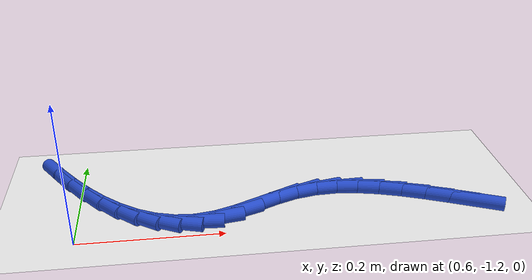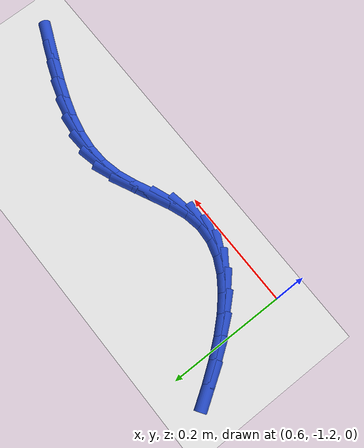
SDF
<sdf version="1.6">
 <world name="default">
  <model name="ground_plane">
   <static>1</static>
   <link name="link">
    <collision name="collision">
     <geometry><plane><normal>0 0 1</normal><size>100 100</size></plane></geometry>
     <surface><friction><ode><mu>100</mu><mu2>50</mu2></ode></friction></surface>
    </collision>
    <visual name="visual">
     <cast_shadows>0</cast_shadows>
     <geometry><plane><normal>0 0 1</normal><size>100 100</size></plane></geometry>
     <material>
      <script><uri>file://media/materials/scripts/gazebo.material</uri><name>Gazebo/WhiteGlow</name></script>
     </material>
    </visual>
   </link>
  </model>
  <model name="line">
   <link name="link_202">
    <pose>1.1549698377304118 -1.1771858832569253 0.01 0 1.57 -0.41959190511282735</pose>
    <collision name="collision">
     <geometry><cylinder><radius>0.01</radius><length>0.08</length></cylinder></geometry>
    </collision>
    <visual name="visual">
     <material>
      <script><name>Gazebo/Blue</name><uri>file://media/materials/scripts/gazebo.material</uri></script>
     </material>
     <geometry><cylinder><radius>0.01</radius><length>0.08</length></cylinder></geometry>
    </visual>
   </link>
   <link name="link_203">
    <pose>1.1229098004447817 -1.1628844406621888 0.01 0 1.57 -0.4035290936369427</pose>
    <collision name="collision">
     <geometry><cylinder><radius>0.01</radius><length>0.08</length></cylinder></geometry>
    </collision>
    <visual name="visual">
     <material>
      <script><name>Gazebo/Blue</name><uri>file://media/materials/scripts/gazebo.material</uri></script>
     </material>
     <geometry><cylinder><radius>0.01</radius><length>0.08</length></cylinder></geometry>
    </visual>
   </link>
   <link name="link_204">
    <pose>1.0911427689676503 -1.149321208411166 0.01 0 1.57 -0.3662411742184681</pose>
    <collision name="collision">
     <geometry><cylinder><radius>0.01</radius><length>0.08</length></cylinder></geometry>
    </collision>
    <visual name="visual">
     <material>
      <script><name>Gazebo/Blue</name><uri>file://media/materials/scripts/gazebo.material</uri></script>
     </material>
     <geometry><cylinder><radius>0.01</radius><length>0.08</length></cylinder></geometry>
    </visual>
   </link>
   <link name="link_205">
    <pose>1.059649509799197 -1.137242121875876 0.01 0 1.57 -0.30541732541029387</pose>
    <collision name="collision">
     <geometry><cylinder><radius>0.01</radius><length>0.08</length></cylinder></geometry>
    </collision>
    <visual name="visual">
     <material>
      <script><name>Gazebo/Blue</name><uri>file://media/materials/scripts/gazebo.material</uri></script>
     </material>
     <geometry><cylinder><radius>0.01</radius><length>0.08</length></cylinder></geometry>
    </visual>
   </link>
   <link name="link_206">
    <pose>1.0284107894395969 -1.127393116428337 0.01 0 1.57 -0.2181568518745511</pose>
    <collision name="collision">
     <geometry><cylinder><radius>0.01</radius><length>0.08</length></cylinder></geometry>
    </collision>
    <visual name="visual">
     <material>
      <script><name>Gazebo/Blue</name><uri>file://media/materials/scripts/gazebo.material</uri></script>
     </material>
     <geometry><cylinder><radius>0.01</radius><length>0.08</length></cylinder></geometry>
    </visual>
   </link>
   <link name="link_207">
    <pose>0.9974073743890278 -1.1205201274405678 0.01 0 1.57 -0.10199331529670029</pose>
    <collision name="collision">
     <geometry><cylinder><radius>0.01</radius><length>0.08</length></cylinder></geometry>
    </collision>
    <visual name="visual">
     <material>
      <script><name>Gazebo/Blue</name><uri>file://media/materials/scripts/gazebo.material</uri></script>
     </material>
     <geometry><cylinder><radius>0.01</radius><length>0.08</length></cylinder></geometry>
    </visual>
   </link>
   <link name="link_208">
    <pose>0.9666200311476669 -1.1173690902845868 0.01 0 1.57 0.04302111177157075</pose>
    <collision name="collision">
     <geometry><cylinder><radius>0.01</radius><length>0.08</length></cylinder></geometry>
    </collision>
    <visual name="visual">
     <material>
      <script><name>Gazebo/Blue</name><uri>file://media/materials/scripts/gazebo.material</uri></script>
     </material>
     <geometry><cylinder><radius>0.01</radius><length>0.08</length></cylinder></geometry>
    </visual>
   </link>
   <link name="link_209">
    <pose>0.9360295262156908 -1.118685940332412 0.01 0 1.57 0.2114999820463266</pose>
    <collision name="collision">
     <geometry><cylinder><radius>0.01</radius><length>0.08</length></cylinder></geometry>
    </collision>
    <visual name="visual">
     <material>
      <script><name>Gazebo/Blue</name><uri>file://media/materials/scripts/gazebo.material</uri></script>
     </material>
     <geometry><cylinder><radius>0.01</radius><length>0.08</length></cylinder></geometry>
    </visual>
   </link>
   <link name="link_210">
    <pose>0.9056166578126851 -1.1252159199356107 0.01 0 1.57 0.36835103471396524</pose>
    <collision name="collision">
     <geometry><cylinder><radius>0.01</radius><length>0.08</length></cylinder></geometry>
    </collision>
    <visual name="visual">
     <material>
      <script><name>Gazebo/Blue</name><uri>file://media/materials/scripts/gazebo.material</uri></script>
     </material>
     <geometry><cylinder><radius>0.01</radius><length>0.08</length></cylinder></geometry>
    </visual>
   </link>
   <link name="link_211">
    <pose>0.8754000169700823 -1.136878556437586 0.01 0 1.57 0.4459530728391113</pose>
    <collision name="collision">
     <geometry><cylinder><radius>0.01</radius><length>0.08</length></cylinder></geometry>
    </collision>
    <visual name="visual">
     <material>
      <script><name>Gazebo/Blue</name><uri>file://media/materials/scripts/gazebo.material</uri></script>
     </material>
     <geometry><cylinder><radius>0.01</radius><length>0.08</length></cylinder></geometry>
    </visual>
   </link>
   <link name="link_212">
    <pose>0.8455091774037925 -1.1511685756456471 0.01 0 1.57 0.4433672299074425</pose>
    <collision name="collision">
     <geometry><cylinder><radius>0.01</radius><length>0.08</length></cylinder></geometry>
    </collision>
    <visual name="visual">
     <material>
      <script><name>Gazebo/Blue</name><uri>file://media/materials/scripts/gazebo.material</uri></script>
     </material>
     <geometry><cylinder><radius>0.01</radius><length>0.08</length></cylinder></geometry>
    </visual>
   </link>
   <link name="link_213">
    <pose>0.8160939812300293 -1.1651378698888588 0.01 0 1.57 0.355853820651177</pose>
    <collision name="collision">
     <geometry><cylinder><radius>0.01</radius><length>0.08</length></cylinder></geometry>
    </collision>
    <visual name="visual">
     <material>
      <script><name>Gazebo/Blue</name><uri>file://media/materials/scripts/gazebo.material</uri></script>
     </material>
     <geometry><cylinder><radius>0.01</radius><length>0.08</length></cylinder></geometry>
    </visual>
   </link>
   <link name="link_214">
    <pose>0.787304270565009 -1.1758383314962844 0.01 0 1.57 0.16619133201779995</pose>
    <collision name="collision">
     <geometry><cylinder><radius>0.01</radius><length>0.08</length></cylinder></geometry>
    </collision>
    <visual name="visual">
     <material>
      <script><name>Gazebo/Blue</name><uri>file://media/materials/scripts/gazebo.material</uri></script>
     </material>
     <geometry><cylinder><radius>0.01</radius><length>0.08</length></cylinder></geometry>
    </visual>
   </link>
   <link name="link_215">
    <pose>0.7592807047215303 -1.1805389615699364 0.01 0 1.57 -0.0695478898890142</pose>
    <collision name="collision">
     <geometry><cylinder><radius>0.01</radius><length>0.08</length></cylinder></geometry>
    </collision>
    <visual name="visual">
     <material>
      <script><name>Gazebo/Blue</name><uri>file://media/materials/scripts/gazebo.material</uri></script>
     </material>
     <geometry><cylinder><radius>0.01</radius><length>0.08</length></cylinder></geometry>
    </visual>
   </link>
   <link name="link_216">
    <pose>0.7320736434567531 -1.1786437111651815 0.01 0 1.57 -0.2899624473721375</pose>
    <collision name="collision">
     <geometry><cylinder><radius>0.01</radius><length>0.08</length></cylinder></geometry>
    </collision>
    <visual name="visual">
     <material>
      <script><name>Gazebo/Blue</name><uri>file://media/materials/scripts/gazebo.material</uri></script>
     </material>
     <geometry><cylinder><radius>0.01</radius><length>0.08</length></cylinder></geometry>
    </visual>
   </link>
   <link name="link_217">
    <pose>0.7056821542764823 -1.17076923264981 0.01 0 1.57 -0.4771415210554723</pose>
    <collision name="collision">
     <geometry><cylinder><radius>0.01</radius><length>0.08</length></cylinder></geometry>
    </collision>
    <visual name="visual">
     <material>
      <script><name>Gazebo/Blue</name><uri>file://media/materials/scripts/gazebo.material</uri></script>
     </material>
     <geometry><cylinder><radius>0.01</radius><length>0.08</length></cylinder></geometry>
    </visual>
   </link>
   <link name="link_218">
    <pose>0.680104714548331 -1.1575461310129527 0.01 0 1.57 -0.6269523199670707</pose>
    <collision name="collision">
     <geometry><cylinder><radius>0.01</radius><length>0.08</length></cylinder></geometry>
    </collision>
    <visual name="visual">
     <material>
      <script><name>Gazebo/Blue</name><uri>file://media/materials/scripts/gazebo.material</uri></script>
     </material>
     <geometry><cylinder><radius>0.01</radius><length>0.08</length></cylinder></geometry>
    </visual>
   </link>
   <link name="link_219">
    <pose>0.6553398016399118 -1.1396050112437393 0.01 0 1.57 -0.7435506300194937</pose>
    <collision name="collision">
     <geometry><cylinder><radius>0.01</radius><length>0.08</length></cylinder></geometry>
    </collision>
    <visual name="visual">
     <material>
      <script><name>Gazebo/Blue</name><uri>file://media/materials/scripts/gazebo.material</uri></script>
     </material>
     <geometry><cylinder><radius>0.01</radius><length>0.08</length></cylinder></geometry>
    </visual>
   </link>
   <link name="link_220">
    <pose>0.6313858929188372 -1.117576478331299 0.01 0 1.57 -0.8334985011319574</pose>
    <collision name="collision">
     <geometry><cylinder><radius>0.01</radius><length>0.08</length></cylinder></geometry>
    </collision>
    <visual name="visual">
     <material>
      <script><name>Gazebo/Blue</name><uri>file://media/materials/scripts/gazebo.material</uri></script>
     </material>
     <geometry><cylinder><radius>0.01</radius><length>0.08</length></cylinder></geometry>
    </visual>
   </link>
   <link name="link_221">
    <pose>0.6082414657527211 -1.092091137264763 0.01 0 1.57 -0.9028279590919148</pose>
    <collision name="collision">
     <geometry><cylinder><radius>0.01</radius><length>0.08</length></cylinder></geometry>
    </collision>
    <visual name="visual">
     <material>
      <script><name>Gazebo/Blue</name><uri>file://media/materials/scripts/gazebo.material</uri></script>
     </material>
     <geometry><cylinder><radius>0.01</radius><length>0.08</length></cylinder></geometry>
    </visual>
   </link>
   <link name="link_222">
    <pose>0.5859049975091758 -1.0637795930332612 0.01 0 1.57 -0.9562301154659385</pose>
    <collision name="collision">
     <geometry><cylinder><radius>0.01</radius><length>0.08</length></cylinder></geometry>
    </collision>
    <visual name="visual">
     <material>
      <script><name>Gazebo/Blue</name><uri>file://media/materials/scripts/gazebo.material</uri></script>
     </material>
     <geometry><cylinder><radius>0.01</radius><length>0.08</length></cylinder></geometry>
    </visual>
   </link>
   <link name="link_223">
    <pose>0.564374965555814 -1.0332724506259237 0.01 0 1.57 -0.9970948060884202</pose>
    <collision name="collision">
     <geometry><cylinder><radius>0.01</radius><length>0.08</length></cylinder></geometry>
    </collision>
    <visual name="visual">
     <material>
      <script><name>Gazebo/Blue</name><uri>file://media/materials/scripts/gazebo.material</uri></script>
     </material>
     <geometry><cylinder><radius>0.01</radius><length>0.08</length></cylinder></geometry>
    </visual>
   </link>
  </model>
 </world>
</sdf>
